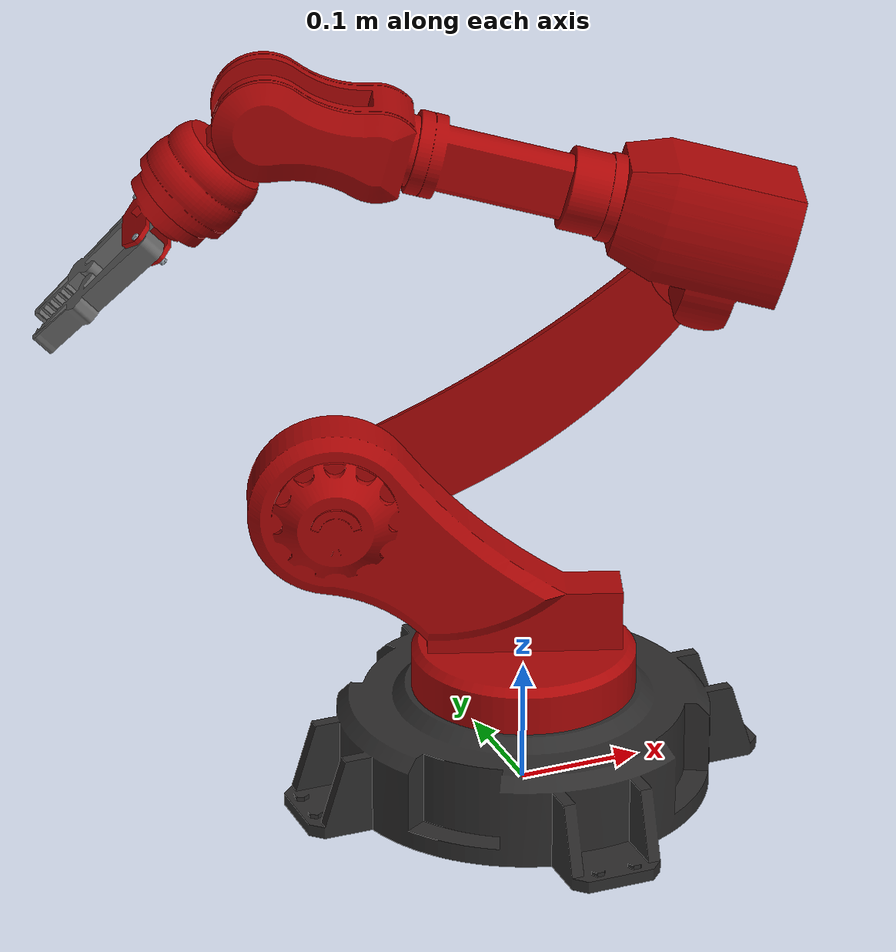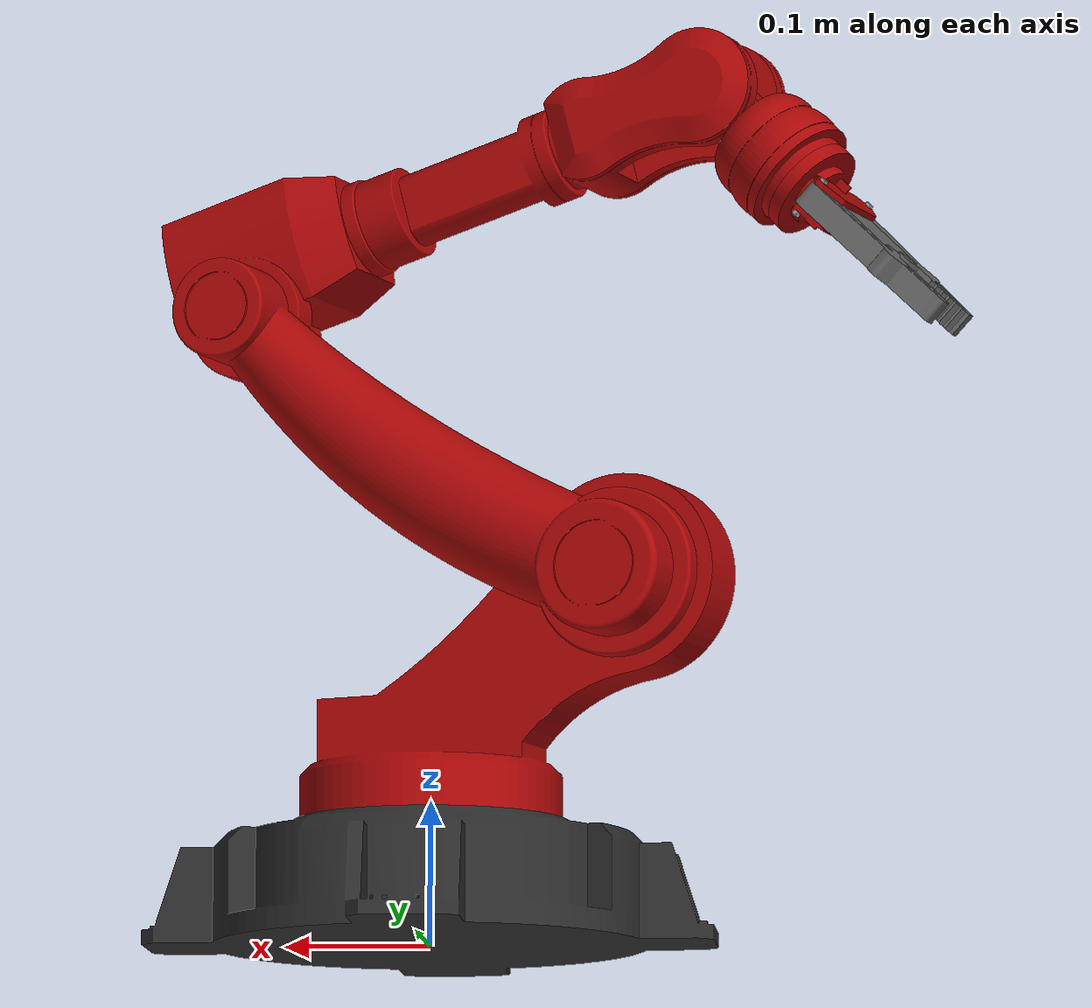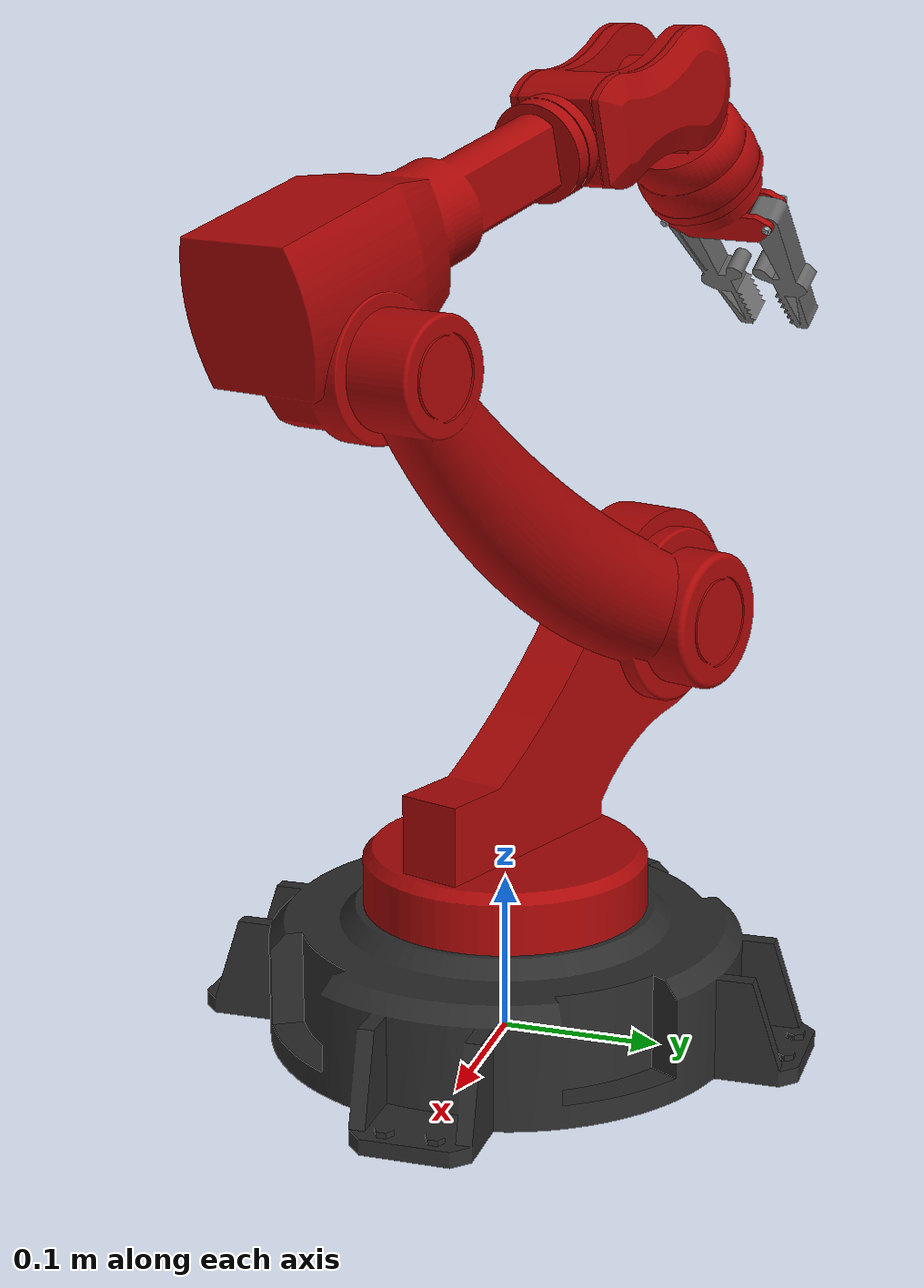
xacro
<robot name="robot_arm" xmlns:xacro="http://www.ros.org/wiki/xacro">
    <link name="arm_link_1">
        <inertial>
            <mass value="6.47806" />
            <origin xyz="-0.0565926 0.0163423 0.0845222" rpy="0 0 -0.341122" />
            <inertia ixx="0.0364298" ixy="0.00925722" ixz="0.0247301" iyy="0.0645721" iyz="-0.00722045" izz="0.0459197" />
        </inertial>
        <visual>
            <origin xyz="3.07274e-19 8.65562e-19 0" rpy="0 0 -0.341122" />
            <geometry>
                <mesh filename="package://robot_arm_description/meshes/arm_link_1.stl" scale="1 1 1" />
            </geometry>
            <material name="0.670588_0.023529_0.023529_0.000000_0.000000">
                <color rgba="0.670588 0.0235294 0.0235294 1" />
            </material>
        </visual>
    </link>
    <link name="arm_link_2">
        <inertial>
            <mass value="2.85607" />
            <origin xyz="-0.150366 -0.00970574 0.0359522" rpy="0 -0 0" />
            <inertia ixx="0.00187796" ixy="-0.000634787" ixz="-4.49547e-05" iyy="0.050243" iyz="-4.84597e-05" izz="0.0513505" />
        </inertial>
        <visual>
            <origin xyz="0 9.18485e-19 0.02" rpy="0 -0 0" />
            <geometry>
                <mesh filename="package://robot_arm_description/meshes/arm_link_2.stl" scale="1 1 1" />
            </geometry>
            <material name="0.670588_0.023529_0.023529_0.000000_0.000000">
                <color rgba="0.670588 0.0235294 0.0235294 1" />
            </material>
        </visual>
    </link>
    <link name="arm_link_3a">
        <inertial>
            <mass value="4.02402" />
            <origin xyz="0.0263375 -0.0460702 0.0391129" rpy="0 -0 0" />
            <inertia ixx="0.024657" ixy="0.0003082" ixz="-0.000353708" iyy="0.00539264" iyz="0.00109139" izz="0.0235049" />
        </inertial>
        <visual>
            <origin xyz="0.028 0.05 0.045" rpy="0 -0 0" />
            <geometry>
                <mesh filename="package://robot_arm_description/meshes/arm_link_3a.stl" scale="1 1 1" />
            </geometry>
            <material name="0.670588_0.023529_0.023529_0.000000_0.000000">
                <color rgba="0.670588 0.0235294 0.0235294 1" />
            </material>
        </visual>
    </link>
    <link name="arm_link_3b">
        <inertial>
            <mass value="1.35011" />
            <origin xyz="1.85636e-18 -0.0846847 1.63715e-17" rpy="0 1.5708 -0" />
            <inertia ixx="0.00366754" ixy="0" ixz="1.48328e-13" iyy="0.00138762" iyz="0" izz="0.00324468" />
        </inertial>
        <visual>
            <origin xyz="-9.18485e-19 -0.02 -2.03945e-34" rpy="0 1.5708 -0" />
            <geometry>
                <mesh filename="package://robot_arm_description/meshes/arm_link_3b.stl" scale="1 1 1" />
            </geometry>
            <material name="0.670588_0.023529_0.023529_0.000000_0.000000">
                <color rgba="0.670588 0.0235294 0.0235294 1" />
            </material>
        </visual>
    </link>
    <link name="base_link">
        <inertial>
            <mass value="43.3197" />
            <origin xyz="3.43497e-18 2.43767e-17 0.0385106" rpy="0 -0 0" />
            <inertia ixx="0.265478" ixy="0" ixz="0" iyy="0.265478" iyz="0" izz="0.482103" />
        </inertial>
        <visual>
            <origin xyz="0 0 0" rpy="0 -0 0" />
            <geometry>
                <mesh filename="package://robot_arm_description/meshes/base_link.stl" scale="1 1 1" />
            </geometry>
            <material name="0.176471_0.172549_0.172549_0.000000_0.000000">
                <color rgba="0.176471 0.172549 0.172549 1" />
            </material>
        </visual>
    </link>
    <link name="claw">
        <inertial>
            <mass value="0.0427299" />
            <origin xyz="-0.0494042 -0.00897157 -0.0104666" rpy="3.14159 1.53279 3.14159" />
            <inertia ixx="3.9095e-06" ixy="-2.00775e-08" ixz="-5.29502e-06" iyy="5.16339e-05" iyz="-8.42076e-09" izz="5.00188e-05" />
        </inertial>
        <visual>
            <origin xyz="0.0065849 -0.009 -0.0617297" rpy="3.14159 1.53279 3.14159" />
            <geometry>
                <mesh filename="package://robot_arm_description/meshes/claw.stl" scale="1 1 1" />
            </geometry>
            <material name="0.400000_0.400000_0.400000_0.000000_0.000000">
                <color rgba="0.4 0.4 0.4 1" />
            </material>
        </visual>
    </link>
    <link name="claw_1">
        <inertial>
            <mass value="0.0427299" />
            <origin xyz="-0.0489708 0.00902843 -0.0123364" rpy="0 1.5708 -0" />
            <inertia ixx="4.37821e-06" ixy="-1.9743e-08" ixz="-7.03063e-06" iyy="5.16339e-05" iyz="-9.17763e-09" izz="4.95501e-05" />
        </inertial>
        <visual>
            <origin xyz="0.00892589 0.009 -0.0614349" rpy="0 1.5708 -0" />
            <geometry>
                <mesh filename="package://robot_arm_description/meshes/claw.stl" scale="1 1 1" />
            </geometry>
            <material name="0.400000_0.400000_0.400000_0.000000_0.000000">
                <color rgba="0.4 0.4 0.4 1" />
            </material>
        </visual>
    </link>
    <link name="end_effector_a">
        <inertial>
            <mass value="1.04564" />
            <origin xyz="-0.0275 0.0280694 -0.0486176" rpy="0.523599 -0 0" />
            <inertia ixx="0.00131435" ixy="0" ixz="0" iyy="0.00117024" iyz="0.000271703" izz="0.000856502" />
        </inertial>
        <visual>
            <origin xyz="-0.0275 0.021 -0.0363731" rpy="0.523599 -0 0" />
            <geometry>
                <mesh filename="package://robot_arm_description/meshes/end_effector_a.stl" scale="1 1 1" />
            </geometry>
            <material name="0.670588_0.023529_0.023529_0.000000_0.000000">
                <color rgba="0.670588 0.0235294 0.0235294 1" />
            </material>
        </visual>
    </link>
    <link name="end_effector_b">
        <inertial>
            <mass value="0.161733" />
            <origin xyz="1.66974e-19 -0.00342727 1.07731e-18" rpy="0 -0 0" />
            <inertia ixx="6.15331e-05" ixy="0" ixz="0" iyy="9.83808e-05" iyz="0" izz="7.84922e-05" />
        </inertial>
        <visual>
            <origin xyz="0 0.01 -9.18485e-19" rpy="0 -0 0" />
            <geometry>
                <mesh filename="package://robot_arm_description/meshes/end_effector_b.stl" scale="1 1 1" />
            </geometry>
            <material name="0.670588_0.023529_0.023529_0.000000_0.000000">
                <color rgba="0.670588 0.0235294 0.0235294 1" />
            </material>
        </visual>
    </link>
    <link name="hex_head_screw_grade_a___b_m3x0_50_x_30">
        <inertial>
            <mass value="0.00203556" />
            <origin xyz="-1.66876e-13 -6.45026e-20 -0.0117609" rpy="0 -0 0" />
            <inertia ixx="2.0606e-07" ixy="0" ixz="0" iyy="2.0606e-07" iyz="0" izz="3.47081e-09" />
        </inertial>
        <visual>
            <origin xyz="0 0 0.0001" rpy="0 -0 0" />
            <geometry>
                <mesh filename="package://robot_arm_description/meshes/Hex_head_screw_grade_A___B_M3x0_50_x_30.stl" scale="1 1 1" />
            </geometry>
            <material name="0.603922_0.647059_0.686275_0.000000_0.000000">
                <color rgba="0.603922 0.647059 0.686275 1" />
            </material>
        </visual>
    </link>
    <link name="hex_head_screw_grade_a___b_m3x0_50_x_30_1">
        <inertial>
            <mass value="0.00203556" />
            <origin xyz="-1.66876e-13 -6.45026e-20 -0.0117609" rpy="0 -0 0" />
            <inertia ixx="2.0606e-07" ixy="0" ixz="0" iyy="2.0606e-07" iyz="0" izz="3.47081e-09" />
        </inertial>
        <visual>
            <origin xyz="0 0 0.0001" rpy="0 -0 0" />
            <geometry>
                <mesh filename="package://robot_arm_description/meshes/Hex_head_screw_grade_A___B_M3x0_50_x_30.stl" scale="1 1 1" />
            </geometry>
            <material name="0.603922_0.647059_0.686275_0.000000_0.000000">
                <color rgba="0.603922 0.647059 0.686275 1" />
            </material>
        </visual>
    </link>
    <link name="prevailing_torque_nut_thin_m3x0_50">
        <inertial>
            <mass value="0.000537796" />
            <origin xyz="-1.01443e-13 -6.7805e-14 -0.00136634" rpy="0 -0 0" />
            <inertia ixx="1.87914e-09" ixy="0" ixz="0" iyy="1.87914e-09" iyz="0" izz="2.60256e-09" />
        </inertial>
        <visual>
            <origin xyz="0 -7.52852e-20 -0.00231466" rpy="0 -0 0" />
            <geometry>
                <mesh filename="package://robot_arm_description/meshes/Prevailing_torque_nut_thin_M3x0_50.stl" scale="1 1 1" />
            </geometry>
            <material name="0.603922_0.647059_0.686275_0.000000_0.000000">
                <color rgba="0.603922 0.647059 0.686275 1" />
            </material>
        </visual>
    </link>
    <link name="prevailing_torque_nut_thin_m3x0_50_1">
        <inertial>
            <mass value="0.000537796" />
            <origin xyz="-1.01443e-13 -6.7805e-14 -0.00136634" rpy="0 -0 0" />
            <inertia ixx="1.87914e-09" ixy="0" ixz="0" iyy="1.87914e-09" iyz="0" izz="2.60256e-09" />
        </inertial>
        <visual>
            <origin xyz="0 -7.52852e-20 -0.00231466" rpy="0 -0 0" />
            <geometry>
                <mesh filename="package://robot_arm_description/meshes/Prevailing_torque_nut_thin_M3x0_50.stl" scale="1 1 1" />
            </geometry>
            <material name="0.603922_0.647059_0.686275_0.000000_0.000000">
                <color rgba="0.603922 0.647059 0.686275 1" />
            </material>
        </visual>
    </link>
    <link name="root" />
    <joint name="arm_link_1_2_joint" type="continuous">
        <origin xyz="-0.141357 0.0501817 0.16" rpy="1.5708 0.610865 2.80047" />
        <axis xyz="-0 -0 -1" />
        <parent link="arm_link_1" />
        <child link="arm_link_2" />
    </joint>
    <joint name="arm_link_2_3a_joint" type="continuous">
        <origin xyz="-0.35 0 7.84231e-17" rpy="0 1.5708 -3.83972" />
        <axis xyz="-1 -0 -0" />
        <parent link="arm_link_2" />
        <child link="arm_link_3a" />
    </joint>
    <joint name="arm_link_3_joint" type="continuous">
        <origin xyz="0.028 -0.226 0.045" rpy="0 1.5708 1.44443e-15" />
        <axis xyz="0 1 0" />
        <parent link="arm_link_3a" />
        <child link="arm_link_3b" />
    </joint>
    <joint name="arm_link_3b_end_eff_a_joint" type="continuous">
        <origin xyz="0 -0.135 -0.0275" rpy="0 1.5708 -3.14159" />
        <axis xyz="1 0 0" />
        <parent link="arm_link_3b" />
        <child link="end_effector_a" />
    </joint>
    <joint name="base_arm_link_1_joint" type="continuous">
        <origin xyz="-2.86527e-17 -1.03025e-17 0.085" rpy="4.42532e-17 -3.55473e-16 3.05311e-16" />
        <axis xyz="0 0 -1" />
        <parent link="base_link" />
        <child link="arm_link_1" />
    </joint>
    <joint name="end_effector_b_claw_1_joint" type="continuous">
        <origin xyz="-0.041194 -0.0172147 0.009" rpy="-1.5708 2.16493e-15 1.5708" />
        <axis xyz="0 -1 0" />
        <parent link="end_effector_b" />
        <child link="claw_1" />
    </joint>
    <joint name="end_effector_b_claw_2_joint" type="continuous">
        <origin xyz="0.041194 -0.0172147 0.009" rpy="1.5708 4.55191e-15 1.5708" />
        <axis xyz="0 1 0" />
        <parent link="end_effector_b" />
        <child link="claw" />
    </joint>
    <joint name="end_effector_b_nut_1_joint" type="fixed">
        <origin xyz="-0.041194 -0.0172147 -0.013" rpy="-1.73637e-17 -1.16875e-17 1.5708" />
        <axis xyz="0 0 1" />
        <parent link="end_effector_b" />
        <child link="prevailing_torque_nut_thin_m3x0_50_1" />
    </joint>
    <joint name="end_effector_b_nut_2_joint" type="fixed">
        <origin xyz="0.041194 -0.0172147 -0.013" rpy="-1.73637e-17 -1.16875e-17 1.5708" />
        <axis xyz="0 0 1" />
        <parent link="end_effector_b" />
        <child link="prevailing_torque_nut_thin_m3x0_50" />
    </joint>
    <joint name="end_effector_b_screw_1_joint" type="fixed">
        <origin xyz="-0.041194 -0.0172147 0.013" rpy="-1.73637e-17 -1.16875e-17 1.5708" />
        <axis xyz="0 0 1" />
        <parent link="end_effector_b" />
        <child link="hex_head_screw_grade_a___b_m3x0_50_x_30" />
    </joint>
    <joint name="end_effector_b_screw_2_joint" type="fixed">
        <origin xyz="0.041194 -0.0172147 0.013" rpy="-1.73637e-17 -1.16875e-17 1.5708" />
        <axis xyz="0 0 1" />
        <parent link="end_effector_b" />
        <child link="hex_head_screw_grade_a___b_m3x0_50_x_30_1" />
    </joint>
    <joint name="end_effector_joint" type="fixed">
        <origin xyz="-0.0275 0.054 -0.0935307" rpy="1.0472 2.9943e-16 -3.14159" />
        <axis xyz="0 1 0" />
        <parent link="end_effector_a" />
        <child link="end_effector_b" />
    </joint>
    <joint name="base_joint" type="fixed">
        <origin xyz="0 0 0" rpy="-1.57209e-18 3.46945e-18 -1.84917e-32" />
        <axis xyz="0 0 1" />
        <parent link="root" />
        <child link="base_link" />
    </joint>
</robot>
